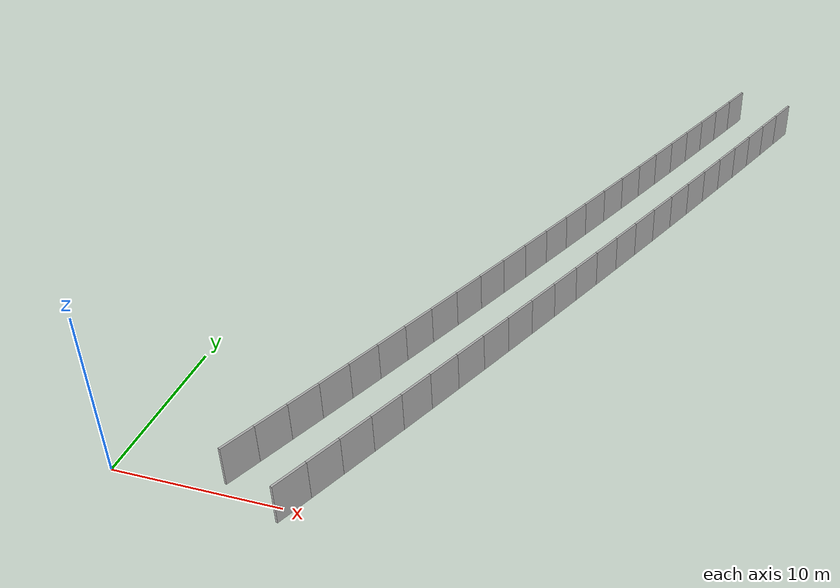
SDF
<?xml version="1.0" ?>
<sdf version="1.6">
  <model name="sps_4517">
    <pose frame="">0 0 0 0 -0 0</pose>
    <static>1</static>
    <self_collide>0</self_collide>
    <allow_auto_disable>0</allow_auto_disable>
    <link name="Wall4371">
      <kinematic>0</kinematic>
      <gravity>1</gravity>
      <self_collide>0</self_collide>
      <collision name="collision">
        <geometry>
          <box>
            <size>2.25482 0.15 2.5</size>
          </box>
        </geometry>
        <pose frame="">0 0 0 0 -0 0</pose>
      </collision>
      <visual name="visual">
        <geometry>
          <box>
            <size>2.25482 0.15 2.5</size>
          </box>
        </geometry>
        <pose frame="">0 0 0 0 -0 0</pose>
        <cast_shadows>1</cast_shadows>
        <transparency>0.0</transparency>
      </visual>
      <pose frame="">10.5803 0.0993794 1.25 0 -0 1.15224</pose>
    </link>
    <link name="Wall4372">
      <kinematic>0</kinematic>
      <gravity>1</gravity>
      <self_collide>0</self_collide>
      <collision name="collision">
        <geometry>
          <box>
            <size>2.25453 0.15 2.5</size>
          </box>
        </geometry>
        <pose frame="">0 0 0 0 -0 0</pose>
      </collision>
      <visual name="visual">
        <geometry>
          <box>
            <size>2.25453 0.15 2.5</size>
          </box>
        </geometry>
        <pose frame="">0 0 0 0 -0 0</pose>
        <cast_shadows>1</cast_shadows>
        <transparency>0.0</transparency>
      </visual>
      <pose frame="">11.4941 2.16057 1.25 0 -0 1.15474</pose>
    </link>
    <link name="Wall4373">
      <kinematic>0</kinematic>
      <gravity>1</gravity>
      <self_collide>0</self_collide>
      <collision name="collision">
        <geometry>
          <box>
            <size>2.25412 0.15 2.5</size>
          </box>
        </geometry>
        <pose frame="">0 0 0 0 -0 0</pose>
      </collision>
      <visual name="visual">
        <geometry>
          <box>
            <size>2.25412 0.15 2.5</size>
          </box>
        </geometry>
        <pose frame="">0 0 0 0 -0 0</pose>
        <cast_shadows>1</cast_shadows>
        <transparency>0.0</transparency>
      </visual>
      <pose frame="">12.4027 4.22368 1.25 0 -0 1.15717</pose>
    </link>
    <link name="Wall4374">
      <kinematic>0</kinematic>
      <gravity>1</gravity>
      <self_collide>0</self_collide>
      <collision name="collision">
        <geometry>
          <box>
            <size>2.25454 0.15 2.5</size>
          </box>
        </geometry>
        <pose frame="">0 0 0 0 -0 0</pose>
      </collision>
      <visual name="visual">
        <geometry>
          <box>
            <size>2.25454 0.15 2.5</size>
          </box>
        </geometry>
        <pose frame="">0 0 0 0 -0 0</pose>
        <cast_shadows>1</cast_shadows>
        <transparency>0.0</transparency>
      </visual>
      <pose frame="">13.3065 6.28889 1.25 0 -0 1.15938</pose>
    </link>
    <link name="Wall4375">
      <kinematic>0</kinematic>
      <gravity>1</gravity>
      <self_collide>0</self_collide>
      <collision name="collision">
        <geometry>
          <box>
            <size>2.25487 0.15 2.5</size>
          </box>
        </geometry>
        <pose frame="">0 0 0 0 -0 0</pose>
      </collision>
      <visual name="visual">
        <geometry>
          <box>
            <size>2.25487 0.15 2.5</size>
          </box>
        </geometry>
        <pose frame="">0 0 0 0 -0 0</pose>
        <cast_shadows>1</cast_shadows>
        <transparency>0.0</transparency>
      </visual>
      <pose frame="">14.2056 8.35658 1.25 0 -0 1.16189</pose>
    </link>
    <link name="Wall4376">
      <kinematic>0</kinematic>
      <gravity>1</gravity>
      <self_collide>0</self_collide>
      <collision name="collision">
        <geometry>
          <box>
            <size>2.25452 0.15 2.5</size>
          </box>
        </geometry>
        <pose frame="">0 0 0 0 -0 0</pose>
      </collision>
      <visual name="visual">
        <geometry>
          <box>
            <size>2.25452 0.15 2.5</size>
          </box>
        </geometry>
        <pose frame="">0 0 0 0 -0 0</pose>
        <cast_shadows>1</cast_shadows>
        <transparency>0.0</transparency>
      </visual>
      <pose frame="">15.0998 10.4264 1.25 0 -0 1.1641</pose>
    </link>
    <link name="Wall4377">
      <kinematic>0</kinematic>
      <gravity>1</gravity>
      <self_collide>0</self_collide>
      <collision name="collision">
        <geometry>
          <box>
            <size>2.25454 0.15 2.5</size>
          </box>
        </geometry>
        <pose frame="">0 0 0 0 -0 0</pose>
      </collision>
      <visual name="visual">
        <geometry>
          <box>
            <size>2.25454 0.15 2.5</size>
          </box>
        </geometry>
        <pose frame="">0 0 0 0 -0 0</pose>
        <cast_shadows>1</cast_shadows>
        <transparency>0.0</transparency>
      </visual>
      <pose frame="">15.9891 12.4981 1.25 0 -0 1.16654</pose>
    </link>
    <link name="Wall4378">
      <kinematic>0</kinematic>
      <gravity>1</gravity>
      <self_collide>0</self_collide>
      <collision name="collision">
        <geometry>
          <box>
            <size>2.2546 0.15 2.5</size>
          </box>
        </geometry>
        <pose frame="">0 0 0 0 -0 0</pose>
      </collision>
      <visual name="visual">
        <geometry>
          <box>
            <size>2.2546 0.15 2.5</size>
          </box>
        </geometry>
        <pose frame="">0 0 0 0 -0 0</pose>
        <cast_shadows>1</cast_shadows>
        <transparency>0.0</transparency>
      </visual>
      <pose frame="">16.8733 14.572 1.25 0 -0 1.16897</pose>
    </link>
    <link name="Wall4379">
      <kinematic>0</kinematic>
      <gravity>1</gravity>
      <self_collide>0</self_collide>
      <collision name="collision">
        <geometry>
          <box>
            <size>2.25476 0.15 2.5</size>
          </box>
        </geometry>
        <pose frame="">0 0 0 0 -0 0</pose>
      </collision>
      <visual name="visual">
        <geometry>
          <box>
            <size>2.25476 0.15 2.5</size>
          </box>
        </geometry>
        <pose frame="">0 0 0 0 -0 0</pose>
        <cast_shadows>1</cast_shadows>
        <transparency>0.0</transparency>
      </visual>
      <pose frame="">17.7527 16.6481 1.25 0 -0 1.17129</pose>
    </link>
    <link name="Wall4380">
      <kinematic>0</kinematic>
      <gravity>1</gravity>
      <self_collide>0</self_collide>
      <collision name="collision">
        <geometry>
          <box>
            <size>2.25462 0.15 2.5</size>
          </box>
        </geometry>
        <pose frame="">0 0 0 0 -0 0</pose>
      </collision>
      <visual name="visual">
        <geometry>
          <box>
            <size>2.25462 0.15 2.5</size>
          </box>
        </geometry>
        <pose frame="">0 0 0 0 -0 0</pose>
        <cast_shadows>1</cast_shadows>
        <transparency>0.0</transparency>
      </visual>
      <pose frame="">18.6273 18.7263 1.25 0 -0 1.17368</pose>
    </link>
    <link name="Wall4381">
      <kinematic>0</kinematic>
      <gravity>1</gravity>
      <self_collide>0</self_collide>
      <collision name="collision">
        <geometry>
          <box>
            <size>2.25461 0.15 2.5</size>
          </box>
        </geometry>
        <pose frame="">0 0 0 0 -0 0</pose>
      </collision>
      <visual name="visual">
        <geometry>
          <box>
            <size>2.25461 0.15 2.5</size>
          </box>
        </geometry>
        <pose frame="">0 0 0 0 -0 0</pose>
        <cast_shadows>1</cast_shadows>
        <transparency>0.0</transparency>
      </visual>
      <pose frame="">19.4968 20.8065 1.25 0 -0 1.17608</pose>
    </link>
    <link name="Wall4382">
      <kinematic>0</kinematic>
      <gravity>1</gravity>
      <self_collide>0</self_collide>
      <collision name="collision">
        <geometry>
          <box>
            <size>2.25466 0.15 2.5</size>
          </box>
        </geometry>
        <pose frame="">0 0 0 0 -0 0</pose>
      </collision>
      <visual name="visual">
        <geometry>
          <box>
            <size>2.25466 0.15 2.5</size>
          </box>
        </geometry>
        <pose frame="">0 0 0 0 -0 0</pose>
        <cast_shadows>1</cast_shadows>
        <transparency>0.0</transparency>
      </visual>
      <pose frame="">20.3613 22.8888 1.25 0 -0 1.17849</pose>
    </link>
    <link name="Wall4383">
      <kinematic>0</kinematic>
      <gravity>1</gravity>
      <self_collide>0</self_collide>
      <collision name="collision">
        <geometry>
          <box>
            <size>2.25444 0.15 2.5</size>
          </box>
        </geometry>
        <pose frame="">0 0 0 0 -0 0</pose>
      </collision>
      <visual name="visual">
        <geometry>
          <box>
            <size>2.25444 0.15 2.5</size>
          </box>
        </geometry>
        <pose frame="">0 0 0 0 -0 0</pose>
        <cast_shadows>1</cast_shadows>
        <transparency>0.0</transparency>
      </visual>
      <pose frame="">21.2208 24.9731 1.25 0 -0 1.18085</pose>
    </link>
    <link name="Wall4384">
      <kinematic>0</kinematic>
      <gravity>1</gravity>
      <self_collide>0</self_collide>
      <collision name="collision">
        <geometry>
          <box>
            <size>2.25465 0.15 2.5</size>
          </box>
        </geometry>
        <pose frame="">0 0 0 0 -0 0</pose>
      </collision>
      <visual name="visual">
        <geometry>
          <box>
            <size>2.25465 0.15 2.5</size>
          </box>
        </geometry>
        <pose frame="">0 0 0 0 -0 0</pose>
        <cast_shadows>1</cast_shadows>
        <transparency>0.0</transparency>
      </visual>
      <pose frame="">22.0753 27.0594 1.25 0 -0 1.1832</pose>
    </link>
    <link name="Wall4385">
      <kinematic>0</kinematic>
      <gravity>1</gravity>
      <self_collide>0</self_collide>
      <collision name="collision">
        <geometry>
          <box>
            <size>2.25472 0.15 2.5</size>
          </box>
        </geometry>
        <pose frame="">0 0 0 0 -0 0</pose>
      </collision>
      <visual name="visual">
        <geometry>
          <box>
            <size>2.25472 0.15 2.5</size>
          </box>
        </geometry>
        <pose frame="">0 0 0 0 -0 0</pose>
        <cast_shadows>1</cast_shadows>
        <transparency>0.0</transparency>
      </visual>
      <pose frame="">22.9251 29.1478 1.25 0 -0 1.18549</pose>
    </link>
    <link name="Wall4386">
      <kinematic>0</kinematic>
      <gravity>1</gravity>
      <self_collide>0</self_collide>
      <collision name="collision">
        <geometry>
          <box>
            <size>2.25459 0.15 2.5</size>
          </box>
        </geometry>
        <pose frame="">0 0 0 0 -0 0</pose>
      </collision>
      <visual name="visual">
        <geometry>
          <box>
            <size>2.25459 0.15 2.5</size>
          </box>
        </geometry>
        <pose frame="">0 0 0 0 -0 0</pose>
        <cast_shadows>1</cast_shadows>
        <transparency>0.0</transparency>
      </visual>
      <pose frame="">23.77 31.2382 1.25 0 -0 1.18795</pose>
    </link>
    <link name="Wall4387">
      <kinematic>0</kinematic>
      <gravity>1</gravity>
      <self_collide>0</self_collide>
      <collision name="collision">
        <geometry>
          <box>
            <size>2.25466 0.15 2.5</size>
          </box>
        </geometry>
        <pose frame="">0 0 0 0 -0 0</pose>
      </collision>
      <visual name="visual">
        <geometry>
          <box>
            <size>2.25466 0.15 2.5</size>
          </box>
        </geometry>
        <pose frame="">0 0 0 0 -0 0</pose>
        <cast_shadows>1</cast_shadows>
        <transparency>0.0</transparency>
      </visual>
      <pose frame="">24.6098 33.3306 1.25 0 -0 1.19027</pose>
    </link>
    <link name="Wall4388">
      <kinematic>0</kinematic>
      <gravity>1</gravity>
      <self_collide>0</self_collide>
      <collision name="collision">
        <geometry>
          <box>
            <size>2.25452 0.15 2.5</size>
          </box>
        </geometry>
        <pose frame="">0 0 0 0 -0 0</pose>
      </collision>
      <visual name="visual">
        <geometry>
          <box>
            <size>2.25452 0.15 2.5</size>
          </box>
        </geometry>
        <pose frame="">0 0 0 0 -0 0</pose>
        <cast_shadows>1</cast_shadows>
        <transparency>0.0</transparency>
      </visual>
      <pose frame="">25.4444 35.425 1.25 0 -0 1.19284</pose>
    </link>
    <link name="Wall4389">
      <kinematic>0</kinematic>
      <gravity>1</gravity>
      <self_collide>0</self_collide>
      <collision name="collision">
        <geometry>
          <box>
            <size>2.25423 0.15 2.5</size>
          </box>
        </geometry>
        <pose frame="">0 0 0 0 -0 0</pose>
      </collision>
      <visual name="visual">
        <geometry>
          <box>
            <size>2.25423 0.15 2.5</size>
          </box>
        </geometry>
        <pose frame="">0 0 0 0 -0 0</pose>
        <cast_shadows>1</cast_shadows>
        <transparency>0.0</transparency>
      </visual>
      <pose frame="">26.2739 37.5212 1.25 0 -0 1.19515</pose>
    </link>
    <link name="Wall4390">
      <kinematic>0</kinematic>
      <gravity>1</gravity>
      <self_collide>0</self_collide>
      <collision name="collision">
        <geometry>
          <box>
            <size>2.2547 0.15 2.5</size>
          </box>
        </geometry>
        <pose frame="">0 0 0 0 -0 0</pose>
      </collision>
      <visual name="visual">
        <geometry>
          <box>
            <size>2.2547 0.15 2.5</size>
          </box>
        </geometry>
        <pose frame="">0 0 0 0 -0 0</pose>
        <cast_shadows>1</cast_shadows>
        <transparency>0.0</transparency>
      </visual>
      <pose frame="">27.0987 39.6194 1.25 0 -0 1.19744</pose>
    </link>
    <link name="Wall4391">
      <kinematic>0</kinematic>
      <gravity>1</gravity>
      <self_collide>0</self_collide>
      <collision name="collision">
        <geometry>
          <box>
            <size>2.25481 0.15 2.5</size>
          </box>
        </geometry>
        <pose frame="">0 0 0 0 -0 0</pose>
      </collision>
      <visual name="visual">
        <geometry>
          <box>
            <size>2.25481 0.15 2.5</size>
          </box>
        </geometry>
        <pose frame="">0 0 0 0 -0 0</pose>
        <cast_shadows>1</cast_shadows>
        <transparency>0.0</transparency>
      </visual>
      <pose frame="">27.9185 41.7198 1.25 0 -0 1.19984</pose>
    </link>
    <link name="Wall4392">
      <kinematic>0</kinematic>
      <gravity>1</gravity>
      <self_collide>0</self_collide>
      <collision name="collision">
        <geometry>
          <box>
            <size>2.25462 0.15 2.5</size>
          </box>
        </geometry>
        <pose frame="">0 0 0 0 -0 0</pose>
      </collision>
      <visual name="visual">
        <geometry>
          <box>
            <size>2.25462 0.15 2.5</size>
          </box>
        </geometry>
        <pose frame="">0 0 0 0 -0 0</pose>
        <cast_shadows>1</cast_shadows>
        <transparency>0.0</transparency>
      </visual>
      <pose frame="">28.7335 43.8221 1.25 0 -0 1.20216</pose>
    </link>
    <link name="Wall4393">
      <kinematic>0</kinematic>
      <gravity>1</gravity>
      <self_collide>0</self_collide>
      <collision name="collision">
        <geometry>
          <box>
            <size>2.2545 0.15 2.5</size>
          </box>
        </geometry>
        <pose frame="">0 0 0 0 -0 0</pose>
      </collision>
      <visual name="visual">
        <geometry>
          <box>
            <size>2.2545 0.15 2.5</size>
          </box>
        </geometry>
        <pose frame="">0 0 0 0 -0 0</pose>
        <cast_shadows>1</cast_shadows>
        <transparency>0.0</transparency>
      </visual>
      <pose frame="">29.5433 45.9262 1.25 0 -0 1.20463</pose>
    </link>
    <link name="Wall4394">
      <kinematic>0</kinematic>
      <gravity>1</gravity>
      <self_collide>0</self_collide>
      <collision name="collision">
        <geometry>
          <box>
            <size>2.25477 0.15 2.5</size>
          </box>
        </geometry>
        <pose frame="">0 0 0 0 -0 0</pose>
      </collision>
      <visual name="visual">
        <geometry>
          <box>
            <size>2.25477 0.15 2.5</size>
          </box>
        </geometry>
        <pose frame="">0 0 0 0 -0 0</pose>
        <cast_shadows>1</cast_shadows>
        <transparency>0.0</transparency>
      </visual>
      <pose frame="">30.348 48.0323 1.25 0 -0 1.20697</pose>
    </link>
    <link name="Wall6096">
      <kinematic>0</kinematic>
      <gravity>1</gravity>
      <self_collide>0</self_collide>
      <collision name="collision">
        <geometry>
          <box>
            <size>2.24474 0.15 2.5</size>
          </box>
        </geometry>
        <pose frame="">0 0 0 0 -0 0</pose>
      </collision>
      <visual name="visual">
        <geometry>
          <box>
            <size>2.24474 0.15 2.5</size>
          </box>
        </geometry>
        <pose frame="">0 0 0 0 -0 0</pose>
        <cast_shadows>1</cast_shadows>
        <transparency>0.0</transparency>
      </visual>
      <pose frame="">6.79836 1.782 1.25 0 -0 1.1523</pose>
    </link>
    <link name="Wall6097">
      <kinematic>0</kinematic>
      <gravity>1</gravity>
      <self_collide>0</self_collide>
      <collision name="collision">
        <geometry>
          <box>
            <size>2.24464 0.15 2.5</size>
          </box>
        </geometry>
        <pose frame="">0 0 0 0 -0 0</pose>
      </collision>
      <visual name="visual">
        <geometry>
          <box>
            <size>2.24464 0.15 2.5</size>
          </box>
        </geometry>
        <pose frame="">0 0 0 0 -0 0</pose>
        <cast_shadows>1</cast_shadows>
        <transparency>0.0</transparency>
      </visual>
      <pose frame="">7.70806 3.83409 1.25 0 -0 1.15475</pose>
    </link>
    <link name="Wall6098">
      <kinematic>0</kinematic>
      <gravity>1</gravity>
      <self_collide>0</self_collide>
      <collision name="collision">
        <geometry>
          <box>
            <size>2.24433 0.15 2.5</size>
          </box>
        </geometry>
        <pose frame="">0 0 0 0 -0 0</pose>
      </collision>
      <visual name="visual">
        <geometry>
          <box>
            <size>2.24433 0.15 2.5</size>
          </box>
        </geometry>
        <pose frame="">0 0 0 0 -0 0</pose>
        <cast_shadows>1</cast_shadows>
        <transparency>0.0</transparency>
      </visual>
      <pose frame="">8.61275 5.88817 1.25 0 -0 1.15709</pose>
    </link>
    <link name="Wall6099">
      <kinematic>0</kinematic>
      <gravity>1</gravity>
      <self_collide>0</self_collide>
      <collision name="collision">
        <geometry>
          <box>
            <size>2.24487 0.15 2.5</size>
          </box>
        </geometry>
        <pose frame="">0 0 0 0 -0 0</pose>
      </collision>
      <visual name="visual">
        <geometry>
          <box>
            <size>2.24487 0.15 2.5</size>
          </box>
        </geometry>
        <pose frame="">0 0 0 0 -0 0</pose>
        <cast_shadows>1</cast_shadows>
        <transparency>0.0</transparency>
      </visual>
      <pose frame="">9.51266 7.94447 1.25 0 -0 1.15946</pose>
    </link>
    <link name="Wall6100">
      <kinematic>0</kinematic>
      <gravity>1</gravity>
      <self_collide>0</self_collide>
      <collision name="collision">
        <geometry>
          <box>
            <size>2.24482 0.15 2.5</size>
          </box>
        </geometry>
        <pose frame="">0 0 0 0 -0 0</pose>
      </collision>
      <visual name="visual">
        <geometry>
          <box>
            <size>2.24482 0.15 2.5</size>
          </box>
        </geometry>
        <pose frame="">0 0 0 0 -0 0</pose>
        <cast_shadows>1</cast_shadows>
        <transparency>0.0</transparency>
      </visual>
      <pose frame="">10.4079 10.0031 1.25 0 -0 1.16176</pose>
    </link>
    <link name="Wall6101">
      <kinematic>0</kinematic>
      <gravity>1</gravity>
      <self_collide>0</self_collide>
      <collision name="collision">
        <geometry>
          <box>
            <size>2.2447 0.15 2.5</size>
          </box>
        </geometry>
        <pose frame="">0 0 0 0 -0 0</pose>
      </collision>
      <visual name="visual">
        <geometry>
          <box>
            <size>2.2447 0.15 2.5</size>
          </box>
        </geometry>
        <pose frame="">0 0 0 0 -0 0</pose>
        <cast_shadows>1</cast_shadows>
        <transparency>0.0</transparency>
      </visual>
      <pose frame="">11.2981 12.0638 1.25 0 -0 1.16428</pose>
    </link>
    <link name="Wall6102">
      <kinematic>0</kinematic>
      <gravity>1</gravity>
      <self_collide>0</self_collide>
      <collision name="collision">
        <geometry>
          <box>
            <size>2.2448 0.15 2.5</size>
          </box>
        </geometry>
        <pose frame="">0 0 0 0 -0 0</pose>
      </collision>
      <visual name="visual">
        <geometry>
          <box>
            <size>2.2448 0.15 2.5</size>
          </box>
        </geometry>
        <pose frame="">0 0 0 0 -0 0</pose>
        <cast_shadows>1</cast_shadows>
        <transparency>0.0</transparency>
      </visual>
      <pose frame="">12.1833 14.1266 1.25 0 -0 1.16652</pose>
    </link>
    <link name="Wall6103">
      <kinematic>0</kinematic>
      <gravity>1</gravity>
      <self_collide>0</self_collide>
      <collision name="collision">
        <geometry>
          <box>
            <size>2.2448 0.15 2.5</size>
          </box>
        </geometry>
        <pose frame="">0 0 0 0 -0 0</pose>
      </collision>
      <visual name="visual">
        <geometry>
          <box>
            <size>2.2448 0.15 2.5</size>
          </box>
        </geometry>
        <pose frame="">0 0 0 0 -0 0</pose>
        <cast_shadows>1</cast_shadows>
        <transparency>0.0</transparency>
      </visual>
      <pose frame="">13.0638 16.1915 1.25 0 -0 1.16895</pose>
    </link>
    <link name="Wall6104">
      <kinematic>0</kinematic>
      <gravity>1</gravity>
      <self_collide>0</self_collide>
      <collision name="collision">
        <geometry>
          <box>
            <size>2.24473 0.15 2.5</size>
          </box>
        </geometry>
        <pose frame="">0 0 0 0 -0 0</pose>
      </collision>
      <visual name="visual">
        <geometry>
          <box>
            <size>2.24473 0.15 2.5</size>
          </box>
        </geometry>
        <pose frame="">0 0 0 0 -0 0</pose>
        <cast_shadows>1</cast_shadows>
        <transparency>0.0</transparency>
      </visual>
      <pose frame="">13.9394 18.2585 1.25 0 -0 1.17132</pose>
    </link>
    <link name="Wall6105">
      <kinematic>0</kinematic>
      <gravity>1</gravity>
      <self_collide>0</self_collide>
      <collision name="collision">
        <geometry>
          <box>
            <size>2.24469 0.15 2.5</size>
          </box>
        </geometry>
        <pose frame="">0 0 0 0 -0 0</pose>
      </collision>
      <visual name="visual">
        <geometry>
          <box>
            <size>2.24469 0.15 2.5</size>
          </box>
        </geometry>
        <pose frame="">0 0 0 0 -0 0</pose>
        <cast_shadows>1</cast_shadows>
        <transparency>0.0</transparency>
      </visual>
      <pose frame="">14.81 20.3275 1.25 0 -0 1.17368</pose>
    </link>
    <link name="Wall6106">
      <kinematic>0</kinematic>
      <gravity>1</gravity>
      <self_collide>0</self_collide>
      <collision name="collision">
        <geometry>
          <box>
            <size>2.24488 0.15 2.5</size>
          </box>
        </geometry>
        <pose frame="">0 0 0 0 -0 0</pose>
      </collision>
      <visual name="visual">
        <geometry>
          <box>
            <size>2.24488 0.15 2.5</size>
          </box>
        </geometry>
        <pose frame="">0 0 0 0 -0 0</pose>
        <cast_shadows>1</cast_shadows>
        <transparency>0.0</transparency>
      </visual>
      <pose frame="">15.6757 22.3986 1.25 0 -0 1.17601</pose>
    </link>
    <link name="Wall6107">
      <kinematic>0</kinematic>
      <gravity>1</gravity>
      <self_collide>0</self_collide>
      <collision name="collision">
        <geometry>
          <box>
            <size>2.2447 0.15 2.5</size>
          </box>
        </geometry>
        <pose frame="">0 0 0 0 -0 0</pose>
      </collision>
      <visual name="visual">
        <geometry>
          <box>
            <size>2.2447 0.15 2.5</size>
          </box>
        </geometry>
        <pose frame="">0 0 0 0 -0 0</pose>
        <cast_shadows>1</cast_shadows>
        <transparency>0.0</transparency>
      </visual>
      <pose frame="">16.5366 24.4718 1.25 0 -0 1.17848</pose>
    </link>
    <link name="Wall6108">
      <kinematic>0</kinematic>
      <gravity>1</gravity>
      <self_collide>0</self_collide>
      <collision name="collision">
        <geometry>
          <box>
            <size>2.24485 0.15 2.5</size>
          </box>
        </geometry>
        <pose frame="">0 0 0 0 -0 0</pose>
      </collision>
      <visual name="visual">
        <geometry>
          <box>
            <size>2.24485 0.15 2.5</size>
          </box>
        </geometry>
        <pose frame="">0 0 0 0 -0 0</pose>
        <cast_shadows>1</cast_shadows>
        <transparency>0.0</transparency>
      </visual>
      <pose frame="">17.3924 26.547 1.25 0 -0 1.18074</pose>
    </link>
    <link name="Wall6109">
      <kinematic>0</kinematic>
      <gravity>1</gravity>
      <self_collide>0</self_collide>
      <collision name="collision">
        <geometry>
          <box>
            <size>2.24479 0.15 2.5</size>
          </box>
        </geometry>
        <pose frame="">0 0 0 0 -0 0</pose>
      </collision>
      <visual name="visual">
        <geometry>
          <box>
            <size>2.24479 0.15 2.5</size>
          </box>
        </geometry>
        <pose frame="">0 0 0 0 -0 0</pose>
        <cast_shadows>1</cast_shadows>
        <transparency>0.0</transparency>
      </visual>
      <pose frame="">18.2433 28.6243 1.25 0 -0 1.18332</pose>
    </link>
    <link name="Wall6110">
      <kinematic>0</kinematic>
      <gravity>1</gravity>
      <self_collide>0</self_collide>
      <collision name="collision">
        <geometry>
          <box>
            <size>2.24476 0.15 2.5</size>
          </box>
        </geometry>
        <pose frame="">0 0 0 0 -0 0</pose>
      </collision>
      <visual name="visual">
        <geometry>
          <box>
            <size>2.24476 0.15 2.5</size>
          </box>
        </geometry>
        <pose frame="">0 0 0 0 -0 0</pose>
        <cast_shadows>1</cast_shadows>
        <transparency>0.0</transparency>
      </visual>
      <pose frame="">19.0893 30.7036 1.25 0 -0 1.18551</pose>
    </link>
    <link name="Wall6111">
      <kinematic>0</kinematic>
      <gravity>1</gravity>
      <self_collide>0</self_collide>
      <collision name="collision">
        <geometry>
          <box>
            <size>2.2449 0.15 2.5</size>
          </box>
        </geometry>
        <pose frame="">0 0 0 0 -0 0</pose>
      </collision>
      <visual name="visual">
        <geometry>
          <box>
            <size>2.2449 0.15 2.5</size>
          </box>
        </geometry>
        <pose frame="">0 0 0 0 -0 0</pose>
        <cast_shadows>1</cast_shadows>
        <transparency>0.0</transparency>
      </visual>
      <pose frame="">19.9304 32.7849 1.25 0 -0 1.18797</pose>
    </link>
    <link name="Wall6112">
      <kinematic>0</kinematic>
      <gravity>1</gravity>
      <self_collide>0</self_collide>
      <collision name="collision">
        <geometry>
          <box>
            <size>2.24459 0.15 2.5</size>
          </box>
        </geometry>
        <pose frame="">0 0 0 0 -0 0</pose>
      </collision>
      <visual name="visual">
        <geometry>
          <box>
            <size>2.24459 0.15 2.5</size>
          </box>
        </geometry>
        <pose frame="">0 0 0 0 -0 0</pose>
        <cast_shadows>1</cast_shadows>
        <transparency>0.0</transparency>
      </visual>
      <pose frame="">20.7664 34.8681 1.25 0 -0 1.19029</pose>
    </link>
    <link name="Wall6113">
      <kinematic>0</kinematic>
      <gravity>1</gravity>
      <self_collide>0</self_collide>
      <collision name="collision">
        <geometry>
          <box>
            <size>2.24439 0.15 2.5</size>
          </box>
        </geometry>
        <pose frame="">0 0 0 0 -0 0</pose>
      </collision>
      <visual name="visual">
        <geometry>
          <box>
            <size>2.24439 0.15 2.5</size>
          </box>
        </geometry>
        <pose frame="">0 0 0 0 -0 0</pose>
        <cast_shadows>1</cast_shadows>
        <transparency>0.0</transparency>
      </visual>
      <pose frame="">21.5973 36.9531 1.25 0 -0 1.19286</pose>
    </link>
    <link name="Wall6114">
      <kinematic>0</kinematic>
      <gravity>1</gravity>
      <self_collide>0</self_collide>
      <collision name="collision">
        <geometry>
          <box>
            <size>2.24481 0.15 2.5</size>
          </box>
        </geometry>
        <pose frame="">0 0 0 0 -0 0</pose>
      </collision>
      <visual name="visual">
        <geometry>
          <box>
            <size>2.24481 0.15 2.5</size>
          </box>
        </geometry>
        <pose frame="">0 0 0 0 -0 0</pose>
        <cast_shadows>1</cast_shadows>
        <transparency>0.0</transparency>
      </visual>
      <pose frame="">22.4233 39.0402 1.25 0 -0 1.19504</pose>
    </link>
    <link name="Wall6115">
      <kinematic>0</kinematic>
      <gravity>1</gravity>
      <self_collide>0</self_collide>
      <collision name="collision">
        <geometry>
          <box>
            <size>2.24465 0.15 2.5</size>
          </box>
        </geometry>
        <pose frame="">0 0 0 0 -0 0</pose>
      </collision>
      <visual name="visual">
        <geometry>
          <box>
            <size>2.24465 0.15 2.5</size>
          </box>
        </geometry>
        <pose frame="">0 0 0 0 -0 0</pose>
        <cast_shadows>1</cast_shadows>
        <transparency>0.0</transparency>
      </visual>
      <pose frame="">23.2447 41.1293 1.25 0 -0 1.19738</pose>
    </link>
    <link name="Wall6116">
      <kinematic>0</kinematic>
      <gravity>1</gravity>
      <self_collide>0</self_collide>
      <collision name="collision">
        <geometry>
          <box>
            <size>2.24491 0.15 2.5</size>
          </box>
        </geometry>
        <pose frame="">0 0 0 0 -0 0</pose>
      </collision>
      <visual name="visual">
        <geometry>
          <box>
            <size>2.24491 0.15 2.5</size>
          </box>
        </geometry>
        <pose frame="">0 0 0 0 -0 0</pose>
        <cast_shadows>1</cast_shadows>
        <transparency>0.0</transparency>
      </visual>
      <pose frame="">24.061 43.2204 1.25 0 -0 1.19985</pose>
    </link>
    <link name="Wall6117">
      <kinematic>0</kinematic>
      <gravity>1</gravity>
      <self_collide>0</self_collide>
      <collision name="collision">
        <geometry>
          <box>
            <size>2.24476 0.15 2.5</size>
          </box>
        </geometry>
        <pose frame="">0 0 0 0 -0 0</pose>
      </collision>
      <visual name="visual">
        <geometry>
          <box>
            <size>2.24476 0.15 2.5</size>
          </box>
        </geometry>
        <pose frame="">0 0 0 0 -0 0</pose>
        <cast_shadows>1</cast_shadows>
        <transparency>0.0</transparency>
      </visual>
      <pose frame="">24.8722 45.3135 1.25 0 -0 1.20221</pose>
    </link>
    <link name="Wall6118">
      <kinematic>0</kinematic>
      <gravity>1</gravity>
      <self_collide>0</self_collide>
      <collision name="collision">
        <geometry>
          <box>
            <size>2.24479 0.15 2.5</size>
          </box>
        </geometry>
        <pose frame="">0 0 0 0 -0 0</pose>
      </collision>
      <visual name="visual">
        <geometry>
          <box>
            <size>2.24479 0.15 2.5</size>
          </box>
        </geometry>
        <pose frame="">0 0 0 0 -0 0</pose>
        <cast_shadows>1</cast_shadows>
        <transparency>0.0</transparency>
      </visual>
      <pose frame="">25.6785 47.4085 1.25 0 -0 1.20466</pose>
    </link>
    <link name="Wall6119">
      <kinematic>0</kinematic>
      <gravity>1</gravity>
      <self_collide>0</self_collide>
      <collision name="collision">
        <geometry>
          <box>
            <size>2.24471 0.15 2.5</size>
          </box>
        </geometry>
        <pose frame="">0 0 0 0 -0 0</pose>
      </collision>
      <visual name="visual">
        <geometry>
          <box>
            <size>2.24471 0.15 2.5</size>
          </box>
        </geometry>
        <pose frame="">0 0 0 0 -0 0</pose>
        <cast_shadows>1</cast_shadows>
        <transparency>0.0</transparency>
      </visual>
      <pose frame="">26.4797 49.5054 1.25 0 -0 1.20698</pose>
    </link>
  </model>
</sdf>
